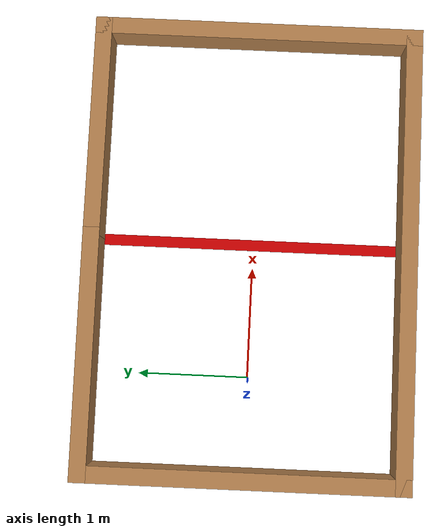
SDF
<?xml version='1.0'?>
<sdf version='1.7'>
  <model name='debi_map2'>
    <pose>1.14483 0.030178 0 0 -0 0</pose>
    <link name='Wall_0'>
      <collision name='Wall_0_Collision'>
        <geometry>
          <box>
            <size>3 0.15 0.31</size>
          </box>
        </geometry>
        <pose>0 0 0.155 0 -0 0</pose>
      </collision>
      <visual name='Wall_0_Visual'>
        <pose>0 0 0.155 0 -0 0</pose>
        <geometry>
          <box>
            <size>3 0.15 0.31</size>
          </box>
        </geometry>
        <material>
          <script>
            <uri>file://media/materials/scripts/gazebo.material</uri>
            <name>Gazebo/Wood</name>
          </script>
          <ambient>1 1 1 1</ambient>
        </material>
        <meta>
          <layer>0</layer>
        </meta>
      </visual>
      <pose>-2.02483 -0.005178 0 0 -0 1.5708</pose>
    </link>
    <link name='Wall_16'>
      <collision name='Wall_16_Collision'>
        <geometry>
          <box>
            <size>2.25 0.15 0.31</size>
          </box>
        </geometry>
        <pose>0 0 0.155 0 -0 0</pose>
      </collision>
      <visual name='Wall_16_Visual'>
        <pose>0 0 0.155 0 -0 0</pose>
        <geometry>
          <box>
            <size>2.25 0.15 0.31</size>
          </box>
        </geometry>
        <material>
          <script>
            <uri>file://media/materials/scripts/gazebo.material</uri>
            <name>Gazebo/Wood</name>
          </script>
          <ambient>1 1 1 1</ambient>
        </material>
        <meta>
          <layer>0</layer>
        </meta>
      </visual>
      <pose>-0.974828 1.42482 0 0 -0 0.004762</pose>
    </link>
    <link name='Wall_19'>
      <collision name='Wall_19_Collision'>
        <geometry>
          <box>
            <size>2.95 0.1 0.001</size>
          </box>
        </geometry>
        <pose>0 0 0.0005 0 -0 0</pose>
      </collision>
      <visual name='Wall_19_Visual'>
        <pose>0 0 0.0005 0 -0 0</pose>
        <geometry>
          <box>
            <size>2.95 0.1 0.001</size>
          </box>
        </geometry>
        <material>
          <script>
            <uri>file://media/materials/scripts/gazebo.material</uri>
            <name>Gazebo/Grey</name>
          </script>
          <ambient>0.8 0 0 1</ambient>
        </material>
        <meta>
          <layer>0</layer>
        </meta>
      </visual>
      <pose>0.075172 0.004822 0 0 -0 -1.5708</pose>
    </link>
    <link name='Wall_21'>
      <collision name='Wall_21_Collision'>
        <geometry>
          <box>
            <size>2.1 0.15 0.31</size>
          </box>
        </geometry>
        <pose>0 0 0.155 0 -0 0</pose>
      </collision>
      <visual name='Wall_21_Visual'>
        <pose>0 0 0.155 0 -0 0</pose>
        <geometry>
          <box>
            <size>2.1 0.15 0.31</size>
          </box>
        </geometry>
        <material>
          <script>
            <uri>file://media/materials/scripts/gazebo.material</uri>
            <name>Gazebo/Wood</name>
          </script>
          <ambient>1 1 1 1</ambient>
        </material>
        <meta>
          <layer>0</layer>
        </meta>
      </visual>
      <pose>1.05017 1.42982 0 0 -0 0</pose>
    </link>
    <link name='Wall_4'>
      <collision name='Wall_4_Collision'>
        <geometry>
          <box>
            <size>3.01 0.15 0.31</size>
          </box>
        </geometry>
        <pose>0 0 0.155 0 -0 0</pose>
      </collision>
      <visual name='Wall_4_Visual'>
        <pose>0 0 0.155 0 -0 0</pose>
        <geometry>
          <box>
            <size>3.01 0.15 0.31</size>
          </box>
        </geometry>
        <material>
          <script>
            <uri>file://media/materials/scripts/gazebo.material</uri>
            <name>Gazebo/Wood</name>
          </script>
          <ambient>1 1 1 1</ambient>
        </material>
        <meta>
          <layer>0</layer>
        </meta>
      </visual>
      <pose>2.02517 -0.000178 0 0 -0 -1.5708</pose>
    </link>
    <link name='Wall_5'>
      <collision name='Wall_5_Collision'>
        <geometry>
          <box>
            <size>4.2 0.15 0.31</size>
          </box>
        </geometry>
        <pose>0 0 0.155 0 -0 0</pose>
      </collision>
      <visual name='Wall_5_Visual'>
        <pose>0 0 0.155 0 -0 0</pose>
        <geometry>
          <box>
            <size>4.2 0.15 0.31</size>
          </box>
        </geometry>
        <material>
          <script>
            <uri>file://media/materials/scripts/gazebo.material</uri>
            <name>Gazebo/Wood</name>
          </script>
          <ambient>1 1 1 1</ambient>
        </material>
        <meta>
          <layer>0</layer>
        </meta>
      </visual>
      <pose>0.000172 -1.43018 0 0 -0 3.14159</pose>
    </link>
    <static>1</static>
  </model>
</sdf>
